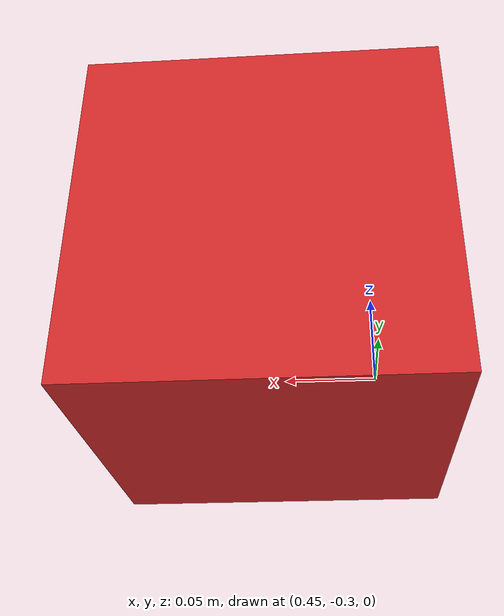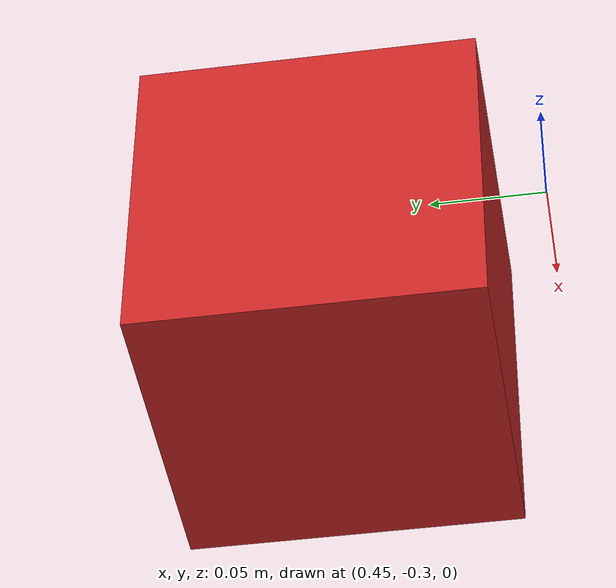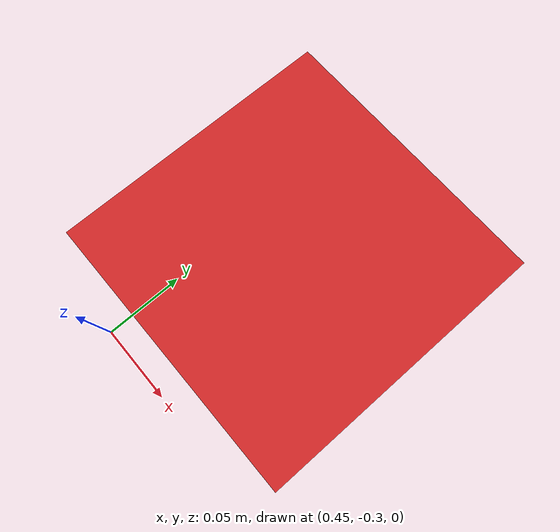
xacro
<?xml version="1.0"?>
<robot xmlns:xacro="http://www.ros.org/wiki/xacro" name="box">

    <link name="box">
        <inertial>
            <origin xyz="0.5 -0.2 0" />
            <mass value="1.0" />
            <inertia  ixx="1.0" ixy="0.0"  ixz="0.0"  iyy="100.0"  iyz="0.0"  izz="1.0" />
        </inertial>
        <visual>
            <origin xyz="0.5 -0.2 0" />
            <geometry>
                <box size="0.15 0.15 0.15"/>
            </geometry>
            <material name="red"/>
        </visual>
        <collision>

            <origin xyz="0.5 -0.2 0" />
            <geometry>
                <box size="0.15 0.15 0.15"/>
            </geometry>
        </collision>

    </link>

    <gazebo reference="box">
        <mu1>0.2</mu1>
        <mu2>0.2</mu2>
        <material>Gazebo/Black</material>
    </gazebo>

      <!-- gazebo ros controller plugin /-->
      <!-- this is defined in ur_description/urdf/common.gazebo.xacro file -->

</robot>
